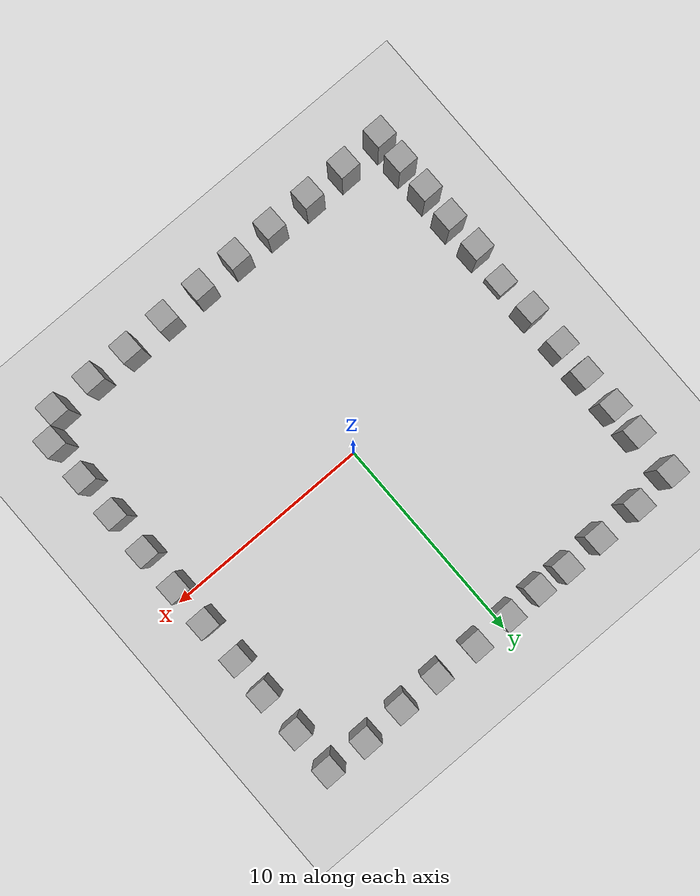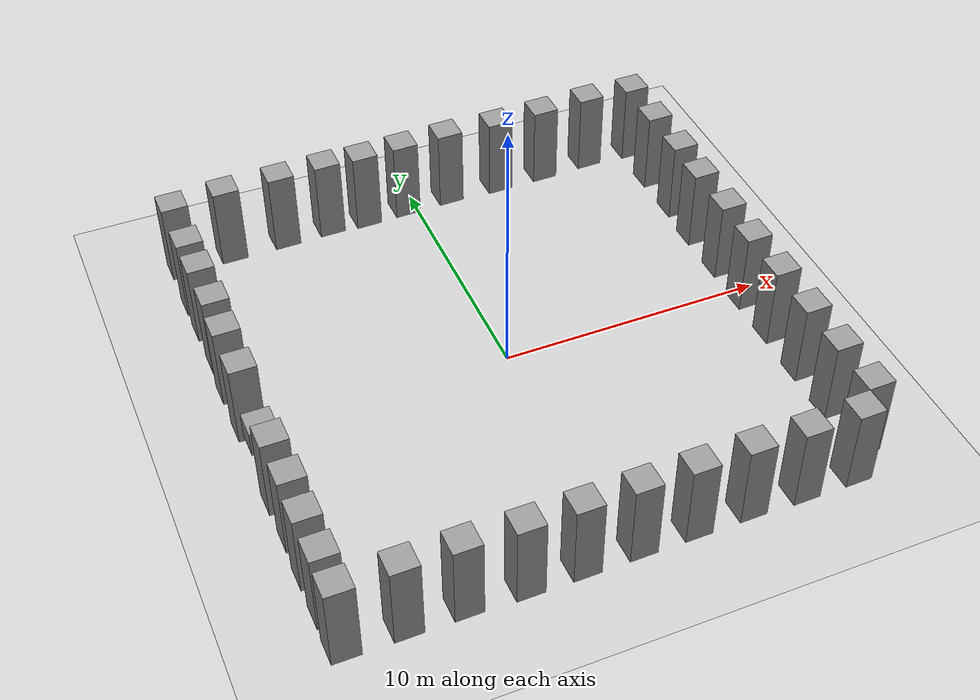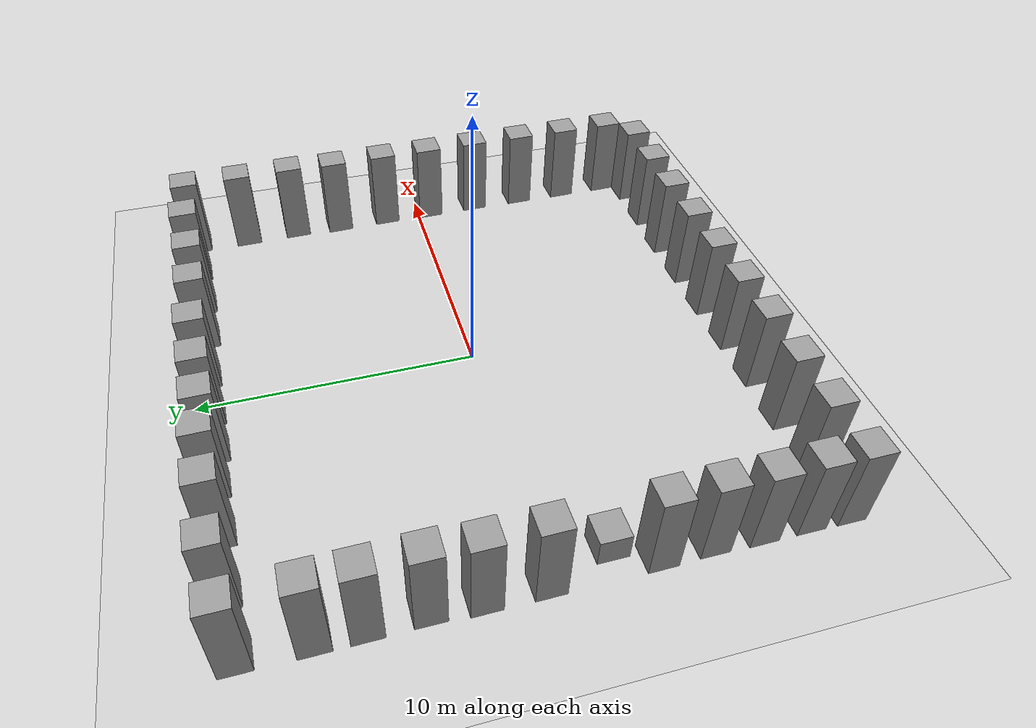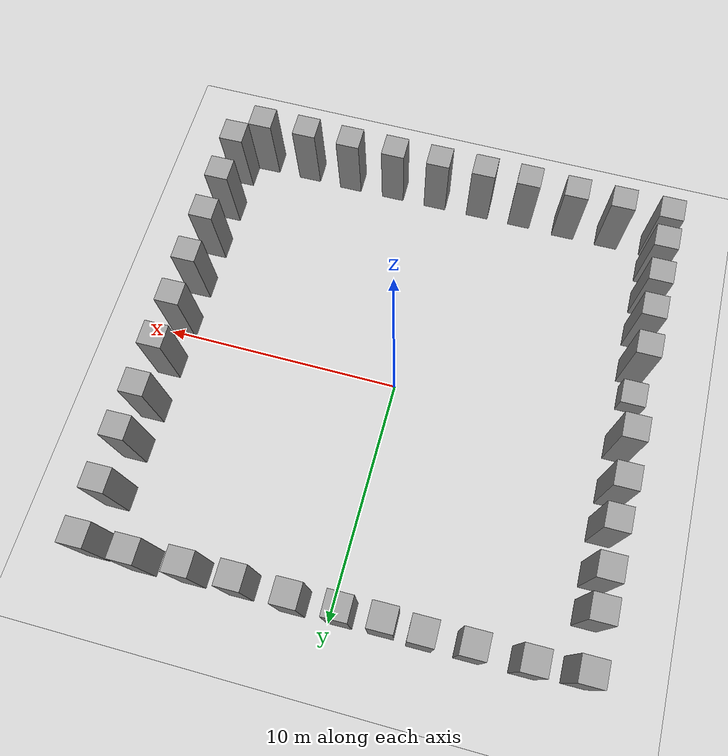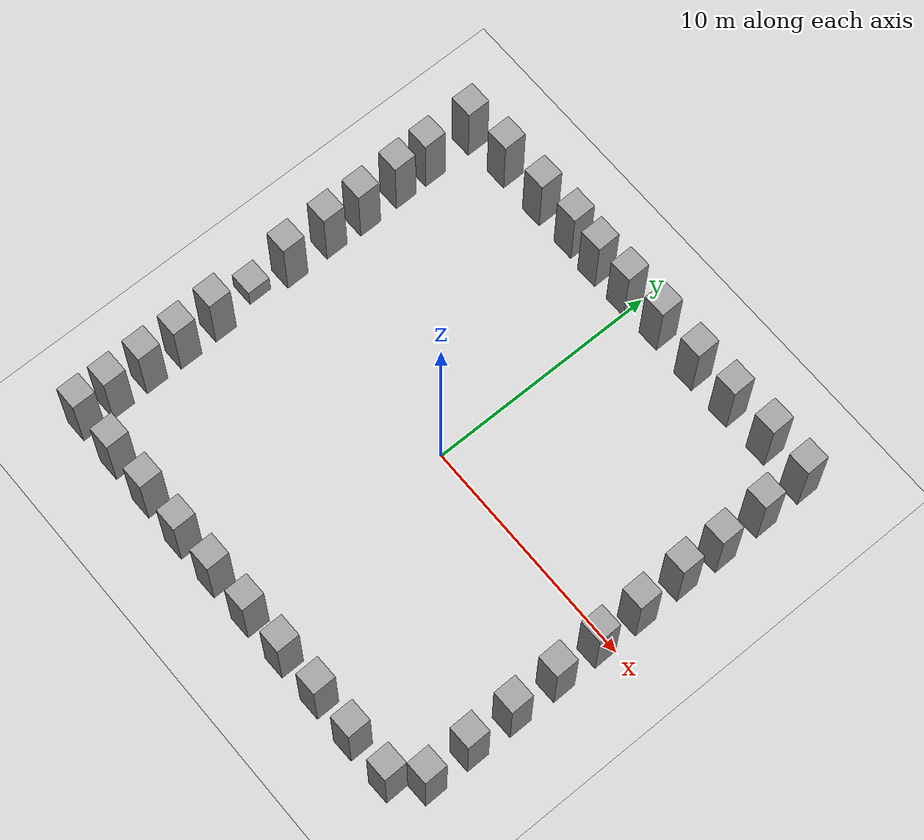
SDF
<sdf version="1.7">
 <world name="default">
  <light name="sun" type="directional">
   <pose>0 0 10 0 -0 0</pose>
   <diffuse>0.8 0.8 0.8 1</diffuse>
   <specular>0.2 0.2 0.2 1</specular>
   <attenuation>
    <range>1000</range>
    <constant>0.9</constant>
    <linear>0.01</linear>
    <quadratic>0.001</quadratic>
   </attenuation>
   <direction>-0.5 0.1 -0.9</direction>
   <spot><inner_angle>0</inner_angle><outer_angle>0</outer_angle><falloff>0</falloff></spot>
  </light>
  <model name="ground_plane">
   <static>1</static>
   <link name="link">
    <collision name="collision">
     <geometry><plane><normal>0 0 1</normal><size>100 100</size></plane></geometry>
     <surface>
      <contact><collide_bitmask>65535</collide_bitmask></contact>
      <friction><ode><mu>100</mu><mu2>50</mu2></ode></friction>
     </surface>
    </collision>
    <visual name="visual">
     <cast_shadows>0</cast_shadows>
     <geometry><plane><normal>0 0 1</normal><size>100 100</size></plane></geometry>
     <material>
      <script><uri>file://media/materials/scripts/gazebo.material</uri><name>Gazebo/Grey</name></script>
     </material>
    </visual>
   </link>
  </model>
  <physics name="default_physics" default="0" type="ode">
   <ode>
    <solver>
     <type>quick</type>
     <iters>10</iters>
     <sor>1.3</sor>
     <use_dynamic_moi_rescaling>0</use_dynamic_moi_rescaling>
    </solver>
    <constraints>
     <cfm>0</cfm>
     <erp>0.2</erp>
     <contact_max_correcting_vel>100</contact_max_correcting_vel>
     <contact_surface_layer>0.001</contact_surface_layer>
    </constraints>
   </ode>
   <max_step_size>0.004</max_step_size>
   <real_time_factor>1</real_time_factor>
   <real_time_update_rate>250</real_time_update_rate>
  </physics>
  <gravity>0 0 -9.8066</gravity>
  <magnetic_field>6e-06 2.3e-05 -4.2e-05</magnetic_field>
  <atmosphere type="adiabatic"/>
  <scene><ambient>0.4 0.4 0.4 1</ambient><background>0.7 0.7 0.7 1</background><shadows>1</shadows></scene>
  <spherical_coordinates>
   <surface_model>EARTH_WGS84</surface_model>
   <latitude_deg>0</latitude_deg>
   <longitude_deg>0</longitude_deg>
   <elevation>0</elevation>
   <heading_deg>0</heading_deg>
  </spherical_coordinates>
  <model name="unit_box">
   <pose>-9.5074 -1.45684 1.65392 2.9e-05 2e-06 0.006336</pose>
   <link name="link">
    <inertial>
     <mass>1</mass>
     <inertia>
      <ixx>0.166667</ixx>
      <ixy>0</ixy>
      <ixz>0</ixz>
      <iyy>0.166667</iyy>
      <iyz>0</iyz>
      <izz>0.166667</izz>
     </inertia>
    </inertial>
    <collision name="collision"><geometry><box><size>1 1 1</size></box></geometry></collision>
    <visual name="visual">
     <geometry><box><size>1 1 1</size></box></geometry>
     <material>
      <script><name>Gazebo/Grey</name><uri>file://media/materials/scripts/gazebo.material</uri></script>
     </material>
    </visual>
   </link>
  </model>
  <model name="unit_box_clone">
   <pose>-9.55138 -3.17643 1.65392 2.9e-05 2e-06 0.006266</pose>
   <link name="link">
    <inertial>
     <mass>1</mass>
     <inertia>
      <ixx>0.166667</ixx>
      <ixy>0</ixy>
      <ixz>0</ixz>
      <iyy>0.166667</iyy>
      <iyz>0</iyz>
      <izz>0.166667</izz>
     </inertia>
    </inertial>
    <collision name="collision"><geometry><box><size>1 1 3.30783</size></box></geometry></collision>
    <visual name="visual">
     <geometry><box><size>1 1 3.30783</size></box></geometry>
     <material>
      <script><name>Gazebo/Grey</name><uri>file://media/materials/scripts/gazebo.material</uri></script>
     </material>
    </visual>
   </link>
  </model>
  <model name="unit_box_clone_0">
   <pose>-9.50754 -4.8792 1.65392 -2.2e-05 -1e-06 0.004325</pose>
   <link name="link">
    <inertial>
     <mass>1</mass>
     <inertia>
      <ixx>0.166667</ixx>
      <ixy>0</ixy>
      <ixz>0</ixz>
      <iyy>0.166667</iyy>
      <iyz>0</iyz>
      <izz>0.166667</izz>
     </inertia>
    </inertial>
    <collision name="collision"><geometry><box><size>1 1 3.30783</size></box></geometry></collision>
    <visual name="visual">
     <geometry><box><size>1 1 3.30783</size></box></geometry>
     <material>
      <script><name>Gazebo/Grey</name><uri>file://media/materials/scripts/gazebo.material</uri></script>
     </material>
    </visual>
   </link>
  </model>
  <model name="unit_box_clone_1">
   <pose>-9.53698 -6.49058 1.65392 -2.9e-05 -2e-06 0.007267</pose>
   <link name="link">
    <inertial>
     <mass>1</mass>
     <inertia>
      <ixx>0.166667</ixx>
      <ixy>0</ixy>
      <ixz>0</ixz>
      <iyy>0.166667</iyy>
      <iyz>0</iyz>
      <izz>0.166667</izz>
     </inertia>
    </inertial>
    <collision name="collision"><geometry><box><size>1 1 3.30783</size></box></geometry></collision>
    <visual name="visual">
     <geometry><box><size>1 1 3.30783</size></box></geometry>
     <material>
      <script><name>Gazebo/Grey</name><uri>file://media/materials/scripts/gazebo.material</uri></script>
     </material>
    </visual>
   </link>
  </model>
  <model name="unit_box_clone_2">
   <pose>-9.52688 -8.09219 1.65392 -2.9e-05 -2e-06 0.007212</pose>
   <link name="link">
    <inertial>
     <mass>1</mass>
     <inertia>
      <ixx>0.166667</ixx>
      <ixy>0</ixy>
      <ixz>0</ixz>
      <iyy>0.166667</iyy>
      <iyz>0</iyz>
      <izz>0.166667</izz>
     </inertia>
    </inertial>
    <collision name="collision"><geometry><box><size>1 1 3.30783</size></box></geometry></collision>
    <visual name="visual">
     <geometry><box><size>1 1 3.30783</size></box></geometry>
     <material>
      <script><name>Gazebo/Grey</name><uri>file://media/materials/scripts/gazebo.material</uri></script>
     </material>
    </visual>
   </link>
  </model>
  <model name="unit_box_clone_3">
   <pose>-9.54249 -9.48087 1.65392 2.2e-05 1e-06 0.005272</pose>
   <link name="link">
    <inertial>
     <mass>1</mass>
     <inertia>
      <ixx>0.166667</ixx>
      <ixy>0</ixy>
      <ixz>0</ixz>
      <iyy>0.166667</iyy>
      <iyz>0</iyz>
      <izz>0.166667</izz>
     </inertia>
    </inertial>
    <collision name="collision"><geometry><box><size>1 1 3.30783</size></box></geometry></collision>
    <visual name="visual">
     <geometry><box><size>1 1 3.30783</size></box></geometry>
     <material>
      <script><name>Gazebo/Grey</name><uri>file://media/materials/scripts/gazebo.material</uri></script>
     </material>
    </visual>
   </link>
  </model>
  <model name="unit_box_clone_4">
   <pose>-9.55987 0.336648 1.65392 2.9e-05 2e-06 0.008215</pose>
   <link name="link">
    <inertial>
     <mass>1</mass>
     <inertia>
      <ixx>0.166667</ixx>
      <ixy>0</ixy>
      <ixz>0</ixz>
      <iyy>0.166667</iyy>
      <iyz>0</iyz>
      <izz>0.166667</izz>
     </inertia>
    </inertial>
    <collision name="collision"><geometry><box><size>1 1 3.30783</size></box></geometry></collision>
    <visual name="visual">
     <geometry><box><size>1 1 3.30783</size></box></geometry>
     <material>
      <script><name>Gazebo/Grey</name><uri>file://media/materials/scripts/gazebo.material</uri></script>
     </material>
    </visual>
   </link>
  </model>
  <model name="unit_box_clone_5">
   <pose>-9.5604 2.27021 1.65392 2.9e-05 2e-06 0.00816</pose>
   <link name="link">
    <inertial>
     <mass>1</mass>
     <inertia>
      <ixx>0.166667</ixx>
      <ixy>0</ixy>
      <ixz>0</ixz>
      <iyy>0.166667</iyy>
      <iyz>0</iyz>
      <izz>0.166667</izz>
     </inertia>
    </inertial>
    <collision name="collision"><geometry><box><size>1 1 3.30783</size></box></geometry></collision>
    <visual name="visual">
     <geometry><box><size>1 1 3.30783</size></box></geometry>
     <material>
      <script><name>Gazebo/Grey</name><uri>file://media/materials/scripts/gazebo.material</uri></script>
     </material>
    </visual>
   </link>
  </model>
  <model name="unit_box_clone_6">
   <pose>-9.49014 3.89023 1.65392 -2.2e-05 -1e-06 0.006221</pose>
   <link name="link">
    <inertial>
     <mass>1</mass>
     <inertia>
      <ixx>0.166667</ixx>
      <ixy>0</ixy>
      <ixz>0</ixz>
      <iyy>0.166667</iyy>
      <iyz>0</iyz>
      <izz>0.166667</izz>
     </inertia>
    </inertial>
    <collision name="collision"><geometry><box><size>1 1 3.30783</size></box></geometry></collision>
    <visual name="visual">
     <geometry><box><size>1 1 3.30783</size></box></geometry>
     <material>
      <script><name>Gazebo/Grey</name><uri>file://media/materials/scripts/gazebo.material</uri></script>
     </material>
    </visual>
   </link>
  </model>
  <model name="unit_box_clone_7">
   <pose>-9.51986 5.69945 1.65392 -2.9e-05 -2e-06 0.009164</pose>
   <link name="link">
    <inertial>
     <mass>1</mass>
     <inertia>
      <ixx>0.166667</ixx>
      <ixy>0</ixy>
      <ixz>0</ixz>
      <iyy>0.166667</iyy>
      <iyz>0</iyz>
      <izz>0.166667</izz>
     </inertia>
    </inertial>
    <collision name="collision"><geometry><box><size>1 1 3.30783</size></box></geometry></collision>
    <visual name="visual">
     <geometry><box><size>1 1 3.30783</size></box></geometry>
     <material>
      <script><name>Gazebo/Grey</name><uri>file://media/materials/scripts/gazebo.material</uri></script>
     </material>
    </visual>
   </link>
  </model>
  <model name="unit_box_clone_8">
   <pose>-9.52937 7.18827 1.65392 -2.9e-05 -2e-06 0.00911</pose>
   <link name="link">
    <inertial>
     <mass>1</mass>
     <inertia>
      <ixx>0.166667</ixx>
      <ixy>0</ixy>
      <ixz>0</ixz>
      <iyy>0.166667</iyy>
      <iyz>0</iyz>
      <izz>0.166667</izz>
     </inertia>
    </inertial>
    <collision name="collision"><geometry><box><size>1 1 3.30783</size></box></geometry></collision>
    <visual name="visual">
     <geometry><box><size>1 1 3.30783</size></box></geometry>
     <material>
      <script><name>Gazebo/Grey</name><uri>file://media/materials/scripts/gazebo.material</uri></script>
     </material>
    </visual>
   </link>
  </model>
  <model name="unit_box_clone_9">
   <pose>-9.5173 9.34097 1.65392 2.2e-05 1e-06 0.007171</pose>
   <link name="link">
    <inertial>
     <mass>1</mass>
     <inertia>
      <ixx>0.166667</ixx>
      <ixy>0</ixy>
      <ixz>0</ixz>
      <iyy>0.166667</iyy>
      <iyz>0</iyz>
      <izz>0.166667</izz>
     </inertia>
    </inertial>
    <collision name="collision"><geometry><box><size>1 1 3.30783</size></box></geometry></collision>
    <visual name="visual">
     <geometry><box><size>1 1 3.30783</size></box></geometry>
     <material>
      <script><name>Gazebo/Grey</name><uri>file://media/materials/scripts/gazebo.material</uri></script>
     </material>
    </visual>
   </link>
  </model>
  <model name="unit_box_clone_10">
   <pose>-7.54205 9.48885 1.65392 2.9e-05 2e-06 0.010116</pose>
   <link name="link">
    <inertial>
     <mass>1</mass>
     <inertia>
      <ixx>0.166667</ixx>
      <ixy>0</ixy>
      <ixz>0</ixz>
      <iyy>0.166667</iyy>
      <iyz>0</iyz>
      <izz>0.166667</izz>
     </inertia>
    </inertial>
    <collision name="collision"><geometry><box><size>1 1 3.30783</size></box></geometry></collision>
    <visual name="visual">
     <geometry><box><size>1 1 3.30783</size></box></geometry>
     <material>
      <script><name>Gazebo/Grey</name><uri>file://media/materials/scripts/gazebo.material</uri></script>
     </material>
    </visual>
   </link>
  </model>
  <model name="unit_box_clone_11">
   <pose>-5.41094 9.49383 1.65392 2.9e-05 2e-06 0.010061</pose>
   <link name="link">
    <inertial>
     <mass>1</mass>
     <inertia>
      <ixx>0.166667</ixx>
      <ixy>0</ixy>
      <ixz>0</ixz>
      <iyy>0.166667</iyy>
      <iyz>0</iyz>
      <izz>0.166667</izz>
     </inertia>
    </inertial>
    <collision name="collision"><geometry><box><size>1 1 3.30783</size></box></geometry></collision>
    <visual name="visual">
     <geometry><box><size>1 1 3.30783</size></box></geometry>
     <material>
      <script><name>Gazebo/Grey</name><uri>file://media/materials/scripts/gazebo.material</uri></script>
     </material>
    </visual>
   </link>
  </model>
  <model name="unit_box_clone_12">
   <pose>-3.56997 9.53366 1.65392 -2.2e-05 -1e-06 0.008124</pose>
   <link name="link">
    <inertial>
     <mass>1</mass>
     <inertia>
      <ixx>0.166667</ixx>
      <ixy>0</ixy>
      <ixz>0</ixz>
      <iyy>0.166667</iyy>
      <iyz>0</iyz>
      <izz>0.166667</izz>
     </inertia>
    </inertial>
    <collision name="collision"><geometry><box><size>1 1 3.30783</size></box></geometry></collision>
    <visual name="visual">
     <geometry><box><size>1 1 3.30783</size></box></geometry>
     <material>
      <script><name>Gazebo/Grey</name><uri>file://media/materials/scripts/gazebo.material</uri></script>
     </material>
    </visual>
   </link>
  </model>
  <model name="unit_box_clone_13">
   <pose>-7.51804 -9.47678 1.65392 -2.9e-05 -2e-06 0.011069</pose>
   <link name="link">
    <inertial>
     <mass>1</mass>
     <inertia>
      <ixx>0.166667</ixx>
      <ixy>0</ixy>
      <ixz>0</ixz>
      <iyy>0.166667</iyy>
      <iyz>0</iyz>
      <izz>0.166667</izz>
     </inertia>
    </inertial>
    <collision name="collision"><geometry><box><size>1 1 3.30783</size></box></geometry></collision>
    <visual name="visual">
     <geometry><box><size>1 1 3.30783</size></box></geometry>
     <material>
      <script><name>Gazebo/Grey</name><uri>file://media/materials/scripts/gazebo.material</uri></script>
     </material>
    </visual>
   </link>
  </model>
  <model name="unit_box_clone_14">
   <pose>-5.53125 -9.48098 1.65392 -2.9e-05 -2e-06 0.011015</pose>
   <link name="link">
    <inertial>
     <mass>1</mass>
     <inertia>
      <ixx>0.166667</ixx>
      <ixy>0</ixy>
      <ixz>0</ixz>
      <iyy>0.166667</iyy>
      <iyz>0</iyz>
      <izz>0.166667</izz>
     </inertia>
    </inertial>
    <collision name="collision"><geometry><box><size>1 1 3.30783</size></box></geometry></collision>
    <visual name="visual">
     <geometry><box><size>1 1 3.30783</size></box></geometry>
     <material>
      <script><name>Gazebo/Grey</name><uri>file://media/materials/scripts/gazebo.material</uri></script>
     </material>
    </visual>
   </link>
  </model>
  <model name="unit_box_clone_15">
   <pose>-3.47698 -9.534 1.65392 2.2e-05 1e-06 0.009078</pose>
   <link name="link">
    <inertial>
     <mass>1</mass>
     <inertia>
      <ixx>0.166667</ixx>
      <ixy>0</ixy>
      <ixz>0</ixz>
      <iyy>0.166667</iyy>
      <iyz>0</iyz>
      <izz>0.166667</izz>
     </inertia>
    </inertial>
    <collision name="collision"><geometry><box><size>1 1 3.30783</size></box></geometry></collision>
    <visual name="visual">
     <geometry><box><size>1 1 3.30783</size></box></geometry>
     <material>
      <script><name>Gazebo/Grey</name><uri>file://media/materials/scripts/gazebo.material</uri></script>
     </material>
    </visual>
   </link>
  </model>
  <model name="unit_box_clone_16">
   <pose>-1.5226 -9.52616 1.65392 2.9e-05 2e-06 0.012025</pose>
   <link name="link">
    <inertial>
     <mass>1</mass>
     <inertia>
      <ixx>0.166667</ixx>
      <ixy>0</ixy>
      <ixz>0</ixz>
      <iyy>0.166667</iyy>
      <iyz>0</iyz>
      <izz>0.166667</izz>
     </inertia>
    </inertial>
    <collision name="collision"><geometry><box><size>1 1 3.30783</size></box></geometry></collision>
    <visual name="visual">
     <geometry><box><size>1 1 3.30783</size></box></geometry>
     <material>
      <script><name>Gazebo/Grey</name><uri>file://media/materials/scripts/gazebo.material</uri></script>
     </material>
    </visual>
   </link>
  </model>
  <model name="unit_box_clone_17">
   <pose>0.473789 -9.50688 1.65392 2.9e-05 2e-06 0.01197</pose>
   <link name="link">
    <inertial>
     <mass>1</mass>
     <inertia>
      <ixx>0.166667</ixx>
      <ixy>0</ixy>
      <ixz>0</ixz>
      <iyy>0.166667</iyy>
      <iyz>0</iyz>
      <izz>0.166667</izz>
     </inertia>
    </inertial>
    <collision name="collision"><geometry><box><size>1 1 3.30783</size></box></geometry></collision>
    <visual name="visual">
     <geometry><box><size>1 1 3.30783</size></box></geometry>
     <material>
      <script><name>Gazebo/Grey</name><uri>file://media/materials/scripts/gazebo.material</uri></script>
     </material>
    </visual>
   </link>
  </model>
  <model name="unit_box_clone_18">
   <pose>2.46622 -9.49517 1.65392 -2.2e-05 -1e-06 0.010035</pose>
   <link name="link">
    <inertial>
     <mass>1</mass>
     <inertia>
      <ixx>0.166667</ixx>
      <ixy>0</ixy>
      <ixz>0</ixz>
      <iyy>0.166667</iyy>
      <iyz>0</iyz>
      <izz>0.166667</izz>
     </inertia>
    </inertial>
    <collision name="collision"><geometry><box><size>1 1 3.30783</size></box></geometry></collision>
    <visual name="visual">
     <geometry><box><size>1 1 3.30783</size></box></geometry>
     <material>
      <script><name>Gazebo/Grey</name><uri>file://media/materials/scripts/gazebo.material</uri></script>
     </material>
    </visual>
   </link>
  </model>
  <model name="unit_box_clone_19">
   <pose>4.4881 -9.476 1.65392 -2.9e-05 -2e-06 0.012982</pose>
   <link name="link">
    <inertial>
     <mass>1</mass>
     <inertia>
      <ixx>0.166667</ixx>
      <ixy>0</ixy>
      <ixz>0</ixz>
      <iyy>0.166667</iyy>
      <iyz>0</iyz>
      <izz>0.166667</izz>
     </inertia>
    </inertial>
    <collision name="collision"><geometry><box><size>1 1 3.30783</size></box></geometry></collision>
    <visual name="visual">
     <geometry><box><size>1 1 3.30783</size></box></geometry>
     <material>
      <script><name>Gazebo/Grey</name><uri>file://media/materials/scripts/gazebo.material</uri></script>
     </material>
    </visual>
   </link>
  </model>
  <model name="unit_box_clone_20">
   <pose>6.47451 -9.51558 1.65392 -2.9e-05 -2e-06 0.012928</pose>
   <link name="link">
    <inertial>
     <mass>1</mass>
     <inertia>
      <ixx>0.166667</ixx>
      <ixy>0</ixy>
      <ixz>0</ixz>
      <iyy>0.166667</iyy>
      <iyz>0</iyz>
      <izz>0.166667</izz>
     </inertia>
    </inertial>
    <collision name="collision"><geometry><box><size>1 1 3.30783</size></box></geometry></collision>
    <visual name="visual">
     <geometry><box><size>1 1 3.30783</size></box></geometry>
     <material>
      <script><name>Gazebo/Grey</name><uri>file://media/materials/scripts/gazebo.material</uri></script>
     </material>
    </visual>
   </link>
  </model>
  <model name="unit_box_clone_21">
   <pose>8.47001 -9.50747 1.65392 2.2e-05 1e-06 0.020205</pose>
   <link name="link">
    <inertial>
     <mass>1</mass>
     <inertia>
      <ixx>0.166667</ixx>
      <ixy>0</ixy>
      <ixz>0</ixz>
      <iyy>0.166667</iyy>
      <iyz>0</iyz>
      <izz>0.166667</izz>
     </inertia>
    </inertial>
    <collision name="collision"><geometry><box><size>1 1 3.30783</size></box></geometry></collision>
    <visual name="visual">
     <geometry><box><size>1 1 3.30783</size></box></geometry>
     <material>
      <script><name>Gazebo/Grey</name><uri>file://media/materials/scripts/gazebo.material</uri></script>
     </material>
    </visual>
   </link>
  </model>
  <model name="unit_box_clone_22">
   <pose>9.45115 -8.49893 1.65392 1.2e-05 -1e-06 0.018816</pose>
   <link name="link">
    <inertial>
     <mass>1</mass>
     <inertia>
      <ixx>0.166667</ixx>
      <ixy>0</ixy>
      <ixz>0</ixz>
      <iyy>0.166667</iyy>
      <iyz>0</iyz>
      <izz>0.166667</izz>
     </inertia>
    </inertial>
    <collision name="collision"><geometry><box><size>1 1 3.30783</size></box></geometry></collision>
    <visual name="visual">
     <geometry><box><size>1 1 3.30783</size></box></geometry>
     <material>
      <script><name>Gazebo/Grey</name><uri>file://media/materials/scripts/gazebo.material</uri></script>
     </material>
    </visual>
   </link>
  </model>
  <model name="unit_box_clone_23">
   <pose>9.44576 -6.54853 1.65392 2.9e-05 2e-06 0.013887</pose>
   <link name="link">
    <inertial>
     <mass>1</mass>
     <inertia>
      <ixx>0.166667</ixx>
      <ixy>0</ixy>
      <ixz>0</ixz>
      <iyy>0.166667</iyy>
      <iyz>0</iyz>
      <izz>0.166667</izz>
     </inertia>
    </inertial>
    <collision name="collision"><geometry><box><size>1 1 3.30783</size></box></geometry></collision>
    <visual name="visual">
     <geometry><box><size>1 1 3.30783</size></box></geometry>
     <material>
      <script><name>Gazebo/Grey</name><uri>file://media/materials/scripts/gazebo.material</uri></script>
     </material>
    </visual>
   </link>
  </model>
  <model name="unit_box_clone_24">
   <pose>9.45552 -4.55531 1.65392 -2.2e-05 -1e-06 0.011953</pose>
   <link name="link">
    <inertial>
     <mass>1</mass>
     <inertia>
      <ixx>0.166667</ixx>
      <ixy>0</ixy>
      <ixz>0</ixz>
      <iyy>0.166667</iyy>
      <iyz>0</iyz>
      <izz>0.166667</izz>
     </inertia>
    </inertial>
    <collision name="collision"><geometry><box><size>1 1 3.30783</size></box></geometry></collision>
    <visual name="visual">
     <geometry><box><size>1 1 3.30783</size></box></geometry>
     <material>
      <script><name>Gazebo/Grey</name><uri>file://media/materials/scripts/gazebo.material</uri></script>
     </material>
    </visual>
   </link>
  </model>
  <model name="unit_box_clone_25">
   <pose>9.47066 -2.49715 1.65392 -2.9e-05 -2e-06 0.014902</pose>
   <link name="link">
    <inertial>
     <mass>1</mass>
     <inertia>
      <ixx>0.166667</ixx>
      <ixy>0</ixy>
      <ixz>0</ixz>
      <iyy>0.166667</iyy>
      <iyz>0</iyz>
      <izz>0.166667</izz>
     </inertia>
    </inertial>
    <collision name="collision"><geometry><box><size>1 1 3.30783</size></box></geometry></collision>
    <visual name="visual">
     <geometry><box><size>1 1 3.30783</size></box></geometry>
     <material>
      <script><name>Gazebo/Grey</name><uri>file://media/materials/scripts/gazebo.material</uri></script>
     </material>
    </visual>
   </link>
  </model>
  <model name="unit_box_clone_26">
   <pose>9.45038 -0.503164 1.65392 -2.9e-05 -2e-06 0.014848</pose>
   <link name="link">
    <inertial>
     <mass>1</mass>
     <inertia>
      <ixx>0.166667</ixx>
      <ixy>0</ixy>
      <ixz>0</ixz>
      <iyy>0.166667</iyy>
      <iyz>0</iyz>
      <izz>0.166667</izz>
     </inertia>
    </inertial>
    <collision name="collision"><geometry><box><size>1 1 3.30783</size></box></geometry></collision>
    <visual name="visual">
     <geometry><box><size>1 1 3.30783</size></box></geometry>
     <material>
      <script><name>Gazebo/Grey</name><uri>file://media/materials/scripts/gazebo.material</uri></script>
     </material>
    </visual>
   </link>
  </model>
  <model name="unit_box_clone_27">
   <pose>9.46629 1.43209 1.65392 2.2e-05 1e-06 0.012915</pose>
   <link name="link">
    <inertial>
     <mass>1</mass>
     <inertia>
      <ixx>0.166667</ixx>
      <ixy>0</ixy>
      <ixz>0</ixz>
      <iyy>0.166667</iyy>
      <iyz>0</iyz>
      <izz>0.166667</izz>
     </inertia>
    </inertial>
    <collision name="collision"><geometry><box><size>1 1 3.30783</size></box></geometry></collision>
    <visual name="visual">
     <geometry><box><size>1 1 3.30783</size></box></geometry>
     <material>
      <script><name>Gazebo/Grey</name><uri>file://media/materials/scripts/gazebo.material</uri></script>
     </material>
    </visual>
   </link>
  </model>
  <model name="unit_box_clone_28">
   <pose>9.43801 3.48203 1.65392 2.9e-05 2e-06 0.015864</pose>
   <link name="link">
    <inertial>
     <mass>1</mass>
     <inertia>
      <ixx>0.166667</ixx>
      <ixy>0</ixy>
      <ixz>0</ixz>
      <iyy>0.166667</iyy>
      <iyz>0</iyz>
      <izz>0.166667</izz>
     </inertia>
    </inertial>
    <collision name="collision"><geometry><box><size>1 1 3.30783</size></box></geometry></collision>
    <visual name="visual">
     <geometry><box><size>1 1 3.30783</size></box></geometry>
     <material>
      <script><name>Gazebo/Grey</name><uri>file://media/materials/scripts/gazebo.material</uri></script>
     </material>
    </visual>
   </link>
  </model>
  <model name="unit_box_clone_29">
   <pose>9.5142 5.30388 1.65392 2.9e-05 2e-06 0.015811</pose>
   <link name="link">
    <inertial>
     <mass>1</mass>
     <inertia>
      <ixx>0.166667</ixx>
      <ixy>0</ixy>
      <ixz>0</ixz>
      <iyy>0.166667</iyy>
      <iyz>0</iyz>
      <izz>0.166667</izz>
     </inertia>
    </inertial>
    <collision name="collision"><geometry><box><size>1 1 3.30783</size></box></geometry></collision>
    <visual name="visual">
     <geometry><box><size>1 1 3.30783</size></box></geometry>
     <material>
      <script><name>Gazebo/Grey</name><uri>file://media/materials/scripts/gazebo.material</uri></script>
     </material>
    </visual>
   </link>
  </model>
  <model name="unit_box_clone_29_clone">
   <pose>9.48033 7.37961 1.65392 -2.9e-05 -2e-06 0.014066</pose>
   <link name="link">
    <inertial>
     <mass>1</mass>
     <inertia>
      <ixx>0.166667</ixx>
      <ixy>0</ixy>
      <ixz>0</ixz>
      <iyy>0.166667</iyy>
      <iyz>0</iyz>
      <izz>0.166667</izz>
     </inertia>
    </inertial>
    <collision name="collision"><geometry><box><size>1 1 3.30783</size></box></geometry></collision>
    <visual name="visual">
     <geometry><box><size>1 1 3.30783</size></box></geometry>
     <material>
      <script><name>Gazebo/Grey</name><uri>file://media/materials/scripts/gazebo.material</uri></script>
     </material>
    </visual>
   </link>
  </model>
  <model name="unit_box_clone_29_clone_0">
   <pose>9.47265 9.44688 1.65392 -2.2e-05 -1e-06 0.014071</pose>
   <link name="link">
    <inertial>
     <mass>1</mass>
     <inertia>
      <ixx>0.166667</ixx>
      <ixy>0</ixy>
      <ixz>0</ixz>
      <iyy>0.166667</iyy>
      <iyz>0</iyz>
      <izz>0.166667</izz>
     </inertia>
    </inertial>
    <collision name="collision"><geometry><box><size>1 1 3.30783</size></box></geometry></collision>
    <visual name="visual">
     <geometry><box><size>1 1 3.30783</size></box></geometry>
     <material>
      <script><name>Gazebo/Grey</name><uri>file://media/materials/scripts/gazebo.material</uri></script>
     </material>
    </visual>
   </link>
  </model>
  <model name="unit_box_clone_29_clone_1">
   <pose>7.51583 9.53595 1.65392 -1.2e-05 -1e-06 0.013869</pose>
   <link name="link">
    <inertial>
     <mass>1</mass>
     <inertia>
      <ixx>0.166667</ixx>
      <ixy>0</ixy>
      <ixz>0</ixz>
      <iyy>0.166667</iyy>
      <iyz>0</iyz>
      <izz>0.166667</izz>
     </inertia>
    </inertial>
    <collision name="collision"><geometry><box><size>1 1 3.30783</size></box></geometry></collision>
    <visual name="visual">
     <geometry><box><size>1 1 3.30783</size></box></geometry>
     <material>
      <script><name>Gazebo/Grey</name><uri>file://media/materials/scripts/gazebo.material</uri></script>
     </material>
    </visual>
   </link>
  </model>
  <model name="unit_box_clone_29_clone_2">
   <pose>5.48052 9.46537 1.65392 2.9e-05 2e-06 0.015031</pose>
   <link name="link">
    <inertial>
     <mass>1</mass>
     <inertia>
      <ixx>0.166667</ixx>
      <ixy>0</ixy>
      <ixz>0</ixz>
      <iyy>0.166667</iyy>
      <iyz>0</iyz>
      <izz>0.166667</izz>
     </inertia>
    </inertial>
    <collision name="collision"><geometry><box><size>1 1 3.30783</size></box></geometry></collision>
    <visual name="visual">
     <geometry><box><size>1 1 3.30783</size></box></geometry>
     <material>
      <script><name>Gazebo/Grey</name><uri>file://media/materials/scripts/gazebo.material</uri></script>
     </material>
    </visual>
   </link>
  </model>
  <model name="unit_box_clone_29_clone_3">
   <pose>3.5249 9.45351 1.65392 2.2e-05 1e-06 0.015036</pose>
   <link name="link">
    <inertial>
     <mass>1</mass>
     <inertia>
      <ixx>0.166667</ixx>
      <ixy>0</ixy>
      <ixz>0</ixz>
      <iyy>0.166667</iyy>
      <iyz>0</iyz>
      <izz>0.166667</izz>
     </inertia>
    </inertial>
    <collision name="collision"><geometry><box><size>1 1 3.30783</size></box></geometry></collision>
    <visual name="visual">
     <geometry><box><size>1 1 3.30783</size></box></geometry>
     <material>
      <script><name>Gazebo/Grey</name><uri>file://media/materials/scripts/gazebo.material</uri></script>
     </material>
    </visual>
   </link>
  </model>
  <model name="unit_box_clone_29_clone_4">
   <pose>1.4274 9.53213 1.65392 1.2e-05 1e-06 0.014835</pose>
   <link name="link">
    <inertial>
     <mass>1</mass>
     <inertia>
      <ixx>0.166667</ixx>
      <ixy>0</ixy>
      <ixz>0</ixz>
      <iyy>0.166667</iyy>
      <iyz>0</iyz>
      <izz>0.166667</izz>
     </inertia>
    </inertial>
    <collision name="collision"><geometry><box><size>1 1 3.30783</size></box></geometry></collision>
    <visual name="visual">
     <geometry><box><size>1 1 3.30783</size></box></geometry>
     <material>
      <script><name>Gazebo/Grey</name><uri>file://media/materials/scripts/gazebo.material</uri></script>
     </material>
    </visual>
   </link>
  </model>
  <model name="unit_box_clone_29_clone_5">
   <pose>-0.436737 9.49463 1.65392 -2.9e-05 -2e-06 0.015998</pose>
   <link name="link">
    <inertial>
     <mass>1</mass>
     <inertia>
      <ixx>0.166667</ixx>
      <ixy>0</ixy>
      <ixz>0</ixz>
      <iyy>0.166667</iyy>
      <iyz>0</iyz>
      <izz>0.166667</izz>
     </inertia>
    </inertial>
    <collision name="collision"><geometry><box><size>1 1 3.30783</size></box></geometry></collision>
    <visual name="visual">
     <geometry><box><size>1 1 3.30783</size></box></geometry>
     <material>
      <script><name>Gazebo/Grey</name><uri>file://media/materials/scripts/gazebo.material</uri></script>
     </material>
    </visual>
   </link>
  </model>
  <model name="unit_box_clone_29_clone_6">
   <pose>-2.08358 9.46021 1.65392 -2.2e-05 -1e-06 0.016003</pose>
   <link name="link">
    <inertial>
     <mass>1</mass>
     <inertia>
      <ixx>0.166667</ixx>
      <ixy>0</ixy>
      <ixz>0</ixz>
      <iyy>0.166667</iyy>
      <iyz>0</iyz>
      <izz>0.166667</izz>
     </inertia>
    </inertial>
    <collision name="collision"><geometry><box><size>1 1 3.30783</size></box></geometry></collision>
    <visual name="visual">
     <geometry><box><size>1 1 3.30783</size></box></geometry>
     <material>
      <script><name>Gazebo/Grey</name><uri>file://media/materials/scripts/gazebo.material</uri></script>
     </material>
    </visual>
   </link>
  </model>
 </world>
</sdf>
